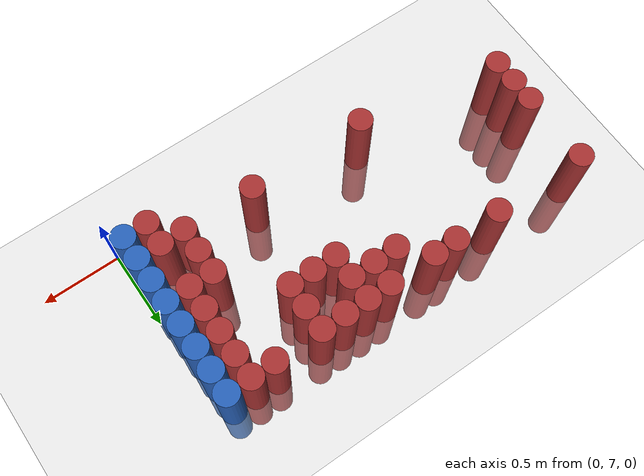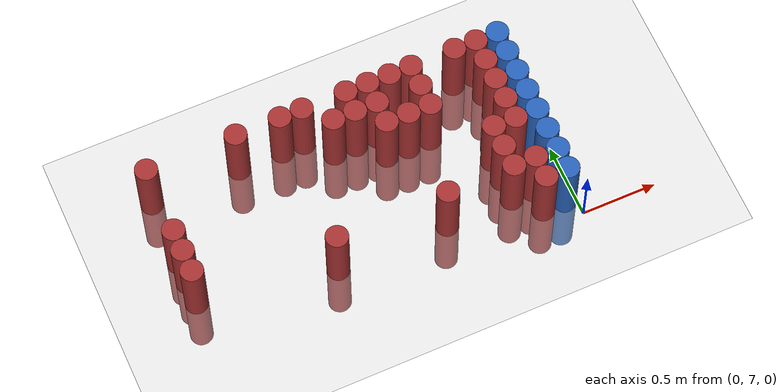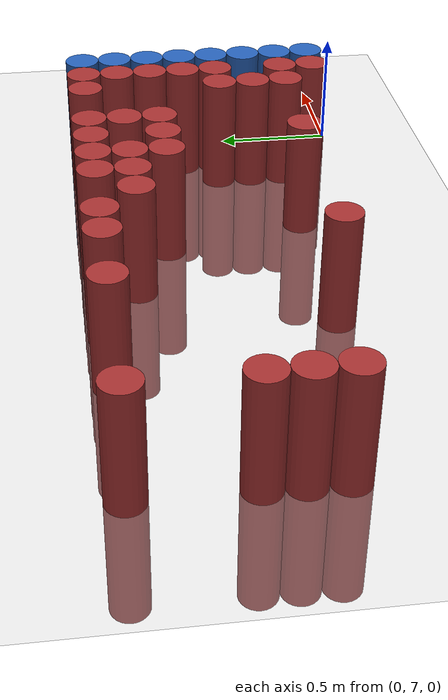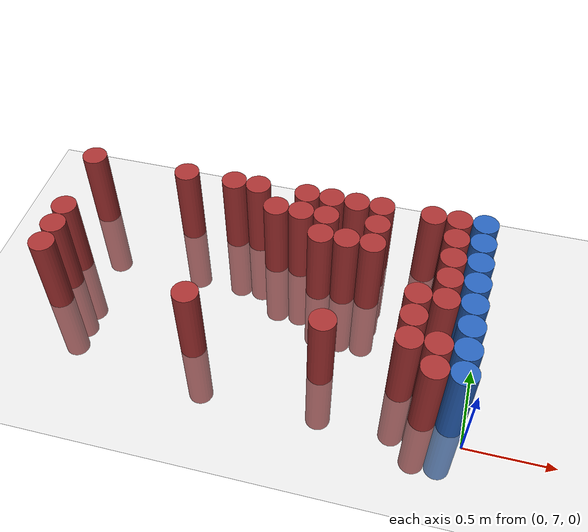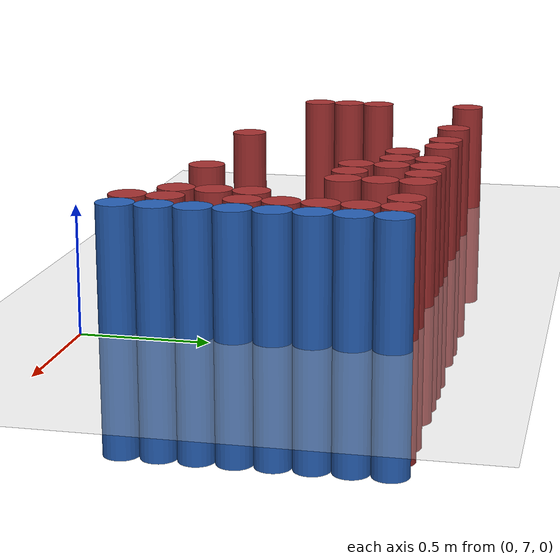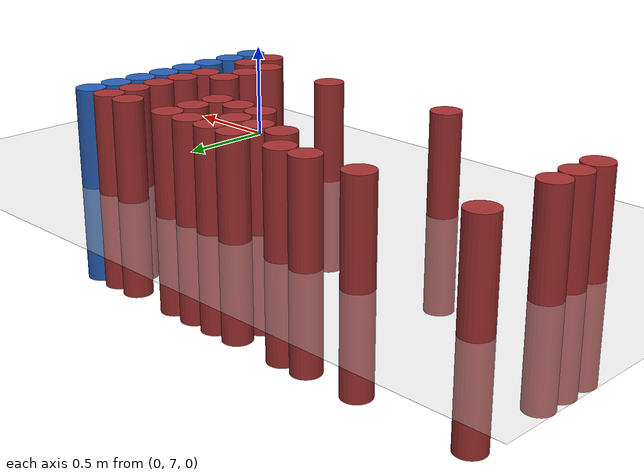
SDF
<sdf version="1.6">
 <world name="default">
  <model name="ground_plane">
   <static>1</static>
   <link name="link">
    <collision name="collision">
     <geometry><plane><normal>0 0 1</normal><size>100 100</size></plane></geometry>
     <surface><friction><ode><mu>100</mu><mu2>50</mu2></ode></friction></surface>
    </collision>
    <visual name="visual">
     <cast_shadows>0</cast_shadows>
     <geometry><plane><normal>0 0 1</normal><size>100 100</size></plane></geometry>
     <material>
      <script><uri>file://media/materials/scripts/gazebo.material</uri><name>Gazebo/Grey</name></script>
     </material>
    </visual>
   </link>
  </model>
  <model name="unit_cylinder_203">
   <static>1</static>
   <pose>-2.475000 7.425000 0.000000 0.000000 0.000000 0.000000</pose>
   <link name="link">
    <inertial>
     <mass>1</mass>
     <inertia><ixx>0.145833</ixx><ixy>0</ixy><ixz>0</ixz><iyy>0.145833</iyy><iyz>0</iyz><izz>0.125</izz></inertia>
    </inertial>
    <collision name="collision">
     <geometry><cylinder><radius>0.075000</radius><length>1</length></cylinder></geometry>
    </collision>
    <visual name="visual">
     <geometry><cylinder><radius>0.075000</radius><length>1</length></cylinder></geometry>
     <material>
      <ambient>0.648000 0.192000 0.192000 1</ambient>
      <diffuse>0.648000 0.192000 0.192000 1</diffuse>
     </material>
     <material>
      <script><name>Gazebo/Grey</name><uri>file://media/materials/scripts/gazebo.material</uri></script>
     </material>
    </visual>
    <sensor name="sensor_contact" type="contact"><contact><collision>collision</collision></contact></sensor>
   </link>
   <plugin filename="gz-sim-touchplugin-system" name="gz::sim::systems::TouchPlugin">
    <target>robot</target>
    <namespace>robot</namespace>
    <time>0.001</time>
    <enabled>true</enabled>
   </plugin>
  </model>
  <model name="unit_cylinder_204">
   <static>1</static>
   <pose>-2.475000 7.575000 0.000000 0.000000 0.000000 0.000000</pose>
   <link name="link">
    <inertial>
     <mass>1</mass>
     <inertia><ixx>0.145833</ixx><ixy>0</ixy><ixz>0</ixz><iyy>0.145833</iyy><iyz>0</iyz><izz>0.125</izz></inertia>
    </inertial>
    <collision name="collision">
     <geometry><cylinder><radius>0.075000</radius><length>1</length></cylinder></geometry>
    </collision>
    <visual name="visual">
     <geometry><cylinder><radius>0.075000</radius><length>1</length></cylinder></geometry>
     <material>
      <ambient>0.648000 0.192000 0.192000 1</ambient>
      <diffuse>0.648000 0.192000 0.192000 1</diffuse>
     </material>
     <material>
      <script><name>Gazebo/Grey</name><uri>file://media/materials/scripts/gazebo.material</uri></script>
     </material>
    </visual>
    <sensor name="sensor_contact" type="contact"><contact><collision>collision</collision></contact></sensor>
   </link>
   <plugin filename="gz-sim-touchplugin-system" name="gz::sim::systems::TouchPlugin">
    <target>robot</target>
    <namespace>robot</namespace>
    <time>0.001</time>
    <enabled>true</enabled>
   </plugin>
  </model>
  <model name="unit_cylinder_205">
   <static>1</static>
   <pose>-2.475000 7.725000 0.000000 0.000000 0.000000 0.000000</pose>
   <link name="link">
    <inertial>
     <mass>1</mass>
     <inertia><ixx>0.145833</ixx><ixy>0</ixy><ixz>0</ixz><iyy>0.145833</iyy><iyz>0</iyz><izz>0.125</izz></inertia>
    </inertial>
    <collision name="collision">
     <geometry><cylinder><radius>0.075000</radius><length>1</length></cylinder></geometry>
    </collision>
    <visual name="visual">
     <geometry><cylinder><radius>0.075000</radius><length>1</length></cylinder></geometry>
     <material>
      <ambient>0.648000 0.192000 0.192000 1</ambient>
      <diffuse>0.648000 0.192000 0.192000 1</diffuse>
     </material>
     <material>
      <script><name>Gazebo/Grey</name><uri>file://media/materials/scripts/gazebo.material</uri></script>
     </material>
    </visual>
    <sensor name="sensor_contact" type="contact"><contact><collision>collision</collision></contact></sensor>
   </link>
   <plugin filename="gz-sim-touchplugin-system" name="gz::sim::systems::TouchPlugin">
    <target>robot</target>
    <namespace>robot</namespace>
    <time>0.001</time>
    <enabled>true</enabled>
   </plugin>
  </model>
  <model name="unit_cylinder_206">
   <static>1</static>
   <pose>-2.475000 8.175000 0.000000 0.000000 0.000000 0.000000</pose>
   <link name="link">
    <inertial>
     <mass>1</mass>
     <inertia><ixx>0.145833</ixx><ixy>0</ixy><ixz>0</ixz><iyy>0.145833</iyy><iyz>0</iyz><izz>0.125</izz></inertia>
    </inertial>
    <collision name="collision">
     <geometry><cylinder><radius>0.075000</radius><length>1</length></cylinder></geometry>
    </collision>
    <visual name="visual">
     <geometry><cylinder><radius>0.075000</radius><length>1</length></cylinder></geometry>
     <material>
      <ambient>0.648000 0.192000 0.192000 1</ambient>
      <diffuse>0.648000 0.192000 0.192000 1</diffuse>
     </material>
     <material>
      <script><name>Gazebo/Grey</name><uri>file://media/materials/scripts/gazebo.material</uri></script>
     </material>
    </visual>
    <sensor name="sensor_contact" type="contact"><contact><collision>collision</collision></contact></sensor>
   </link>
   <plugin filename="gz-sim-touchplugin-system" name="gz::sim::systems::TouchPlugin">
    <target>robot</target>
    <namespace>robot</namespace>
    <time>0.001</time>
    <enabled>true</enabled>
   </plugin>
  </model>
  <model name="unit_cylinder_228">
   <static>1</static>
   <pose>-1.875000 8.175000 0.000000 0.000000 0.000000 0.000000</pose>
   <link name="link">
    <inertial>
     <mass>1</mass>
     <inertia><ixx>0.145833</ixx><ixy>0</ixy><ixz>0</ixz><iyy>0.145833</iyy><iyz>0</iyz><izz>0.125</izz></inertia>
    </inertial>
    <collision name="collision">
     <geometry><cylinder><radius>0.075000</radius><length>1</length></cylinder></geometry>
    </collision>
    <visual name="visual">
     <geometry><cylinder><radius>0.075000</radius><length>1</length></cylinder></geometry>
     <material>
      <ambient>0.648000 0.192000 0.192000 1</ambient>
      <diffuse>0.648000 0.192000 0.192000 1</diffuse>
     </material>
     <material>
      <script><name>Gazebo/Grey</name><uri>file://media/materials/scripts/gazebo.material</uri></script>
     </material>
    </visual>
    <sensor name="sensor_contact" type="contact"><contact><collision>collision</collision></contact></sensor>
   </link>
   <plugin filename="gz-sim-touchplugin-system" name="gz::sim::systems::TouchPlugin">
    <target>robot</target>
    <namespace>robot</namespace>
    <time>0.001</time>
    <enabled>true</enabled>
   </plugin>
  </model>
  <model name="unit_cylinder_252">
   <static>1</static>
   <pose>-1.575000 7.275000 0.000000 0.000000 0.000000 0.000000</pose>
   <link name="link">
    <inertial>
     <mass>1</mass>
     <inertia><ixx>0.145833</ixx><ixy>0</ixy><ixz>0</ixz><iyy>0.145833</iyy><iyz>0</iyz><izz>0.125</izz></inertia>
    </inertial>
    <collision name="collision">
     <geometry><cylinder><radius>0.075000</radius><length>1</length></cylinder></geometry>
    </collision>
    <visual name="visual">
     <geometry><cylinder><radius>0.075000</radius><length>1</length></cylinder></geometry>
     <material>
      <ambient>0.648000 0.192000 0.192000 1</ambient>
      <diffuse>0.648000 0.192000 0.192000 1</diffuse>
     </material>
     <material>
      <script><name>Gazebo/Grey</name><uri>file://media/materials/scripts/gazebo.material</uri></script>
     </material>
    </visual>
    <sensor name="sensor_contact" type="contact"><contact><collision>collision</collision></contact></sensor>
   </link>
   <plugin filename="gz-sim-touchplugin-system" name="gz::sim::systems::TouchPlugin">
    <target>robot</target>
    <namespace>robot</namespace>
    <time>0.001</time>
    <enabled>true</enabled>
   </plugin>
  </model>
  <model name="unit_cylinder_253">
   <static>1</static>
   <pose>-1.575000 8.175000 0.000000 0.000000 0.000000 0.000000</pose>
   <link name="link">
    <inertial>
     <mass>1</mass>
     <inertia><ixx>0.145833</ixx><ixy>0</ixy><ixz>0</ixz><iyy>0.145833</iyy><iyz>0</iyz><izz>0.125</izz></inertia>
    </inertial>
    <collision name="collision">
     <geometry><cylinder><radius>0.075000</radius><length>1</length></cylinder></geometry>
    </collision>
    <visual name="visual">
     <geometry><cylinder><radius>0.075000</radius><length>1</length></cylinder></geometry>
     <material>
      <ambient>0.648000 0.192000 0.192000 1</ambient>
      <diffuse>0.648000 0.192000 0.192000 1</diffuse>
     </material>
     <material>
      <script><name>Gazebo/Grey</name><uri>file://media/materials/scripts/gazebo.material</uri></script>
     </material>
    </visual>
    <sensor name="sensor_contact" type="contact"><contact><collision>collision</collision></contact></sensor>
   </link>
   <plugin filename="gz-sim-touchplugin-system" name="gz::sim::systems::TouchPlugin">
    <target>robot</target>
    <namespace>robot</namespace>
    <time>0.001</time>
    <enabled>true</enabled>
   </plugin>
  </model>
  <model name="unit_cylinder_263">
   <static>1</static>
   <pose>-1.425000 8.175000 0.000000 0.000000 0.000000 0.000000</pose>
   <link name="link">
    <inertial>
     <mass>1</mass>
     <inertia><ixx>0.145833</ixx><ixy>0</ixy><ixz>0</ixz><iyy>0.145833</iyy><iyz>0</iyz><izz>0.125</izz></inertia>
    </inertial>
    <collision name="collision">
     <geometry><cylinder><radius>0.075000</radius><length>1</length></cylinder></geometry>
    </collision>
    <visual name="visual">
     <geometry><cylinder><radius>0.075000</radius><length>1</length></cylinder></geometry>
     <material>
      <ambient>0.648000 0.192000 0.192000 1</ambient>
      <diffuse>0.648000 0.192000 0.192000 1</diffuse>
     </material>
     <material>
      <script><name>Gazebo/Grey</name><uri>file://media/materials/scripts/gazebo.material</uri></script>
     </material>
    </visual>
    <sensor name="sensor_contact" type="contact"><contact><collision>collision</collision></contact></sensor>
   </link>
   <plugin filename="gz-sim-touchplugin-system" name="gz::sim::systems::TouchPlugin">
    <target>robot</target>
    <namespace>robot</namespace>
    <time>0.001</time>
    <enabled>true</enabled>
   </plugin>
  </model>
  <model name="unit_cylinder_267">
   <static>1</static>
   <pose>-1.275000 8.025000 0.000000 0.000000 0.000000 0.000000</pose>
   <link name="link">
    <inertial>
     <mass>1</mass>
     <inertia><ixx>0.145833</ixx><ixy>0</ixy><ixz>0</ixz><iyy>0.145833</iyy><iyz>0</iyz><izz>0.125</izz></inertia>
    </inertial>
    <collision name="collision">
     <geometry><cylinder><radius>0.075000</radius><length>1</length></cylinder></geometry>
    </collision>
    <visual name="visual">
     <geometry><cylinder><radius>0.075000</radius><length>1</length></cylinder></geometry>
     <material>
      <ambient>0.648000 0.192000 0.192000 1</ambient>
      <diffuse>0.648000 0.192000 0.192000 1</diffuse>
     </material>
     <material>
      <script><name>Gazebo/Grey</name><uri>file://media/materials/scripts/gazebo.material</uri></script>
     </material>
    </visual>
    <sensor name="sensor_contact" type="contact"><contact><collision>collision</collision></contact></sensor>
   </link>
   <plugin filename="gz-sim-touchplugin-system" name="gz::sim::systems::TouchPlugin">
    <target>robot</target>
    <namespace>robot</namespace>
    <time>0.001</time>
    <enabled>true</enabled>
   </plugin>
  </model>
  <model name="unit_cylinder_270">
   <static>1</static>
   <pose>-1.125000 8.025000 0.000000 0.000000 0.000000 0.000000</pose>
   <link name="link">
    <inertial>
     <mass>1</mass>
     <inertia><ixx>0.145833</ixx><ixy>0</ixy><ixz>0</ixz><iyy>0.145833</iyy><iyz>0</iyz><izz>0.125</izz></inertia>
    </inertial>
    <collision name="collision">
     <geometry><cylinder><radius>0.075000</radius><length>1</length></cylinder></geometry>
    </collision>
    <visual name="visual">
     <geometry><cylinder><radius>0.075000</radius><length>1</length></cylinder></geometry>
     <material>
      <ambient>0.648000 0.192000 0.192000 1</ambient>
      <diffuse>0.648000 0.192000 0.192000 1</diffuse>
     </material>
     <material>
      <script><name>Gazebo/Grey</name><uri>file://media/materials/scripts/gazebo.material</uri></script>
     </material>
    </visual>
    <sensor name="sensor_contact" type="contact"><contact><collision>collision</collision></contact></sensor>
   </link>
   <plugin filename="gz-sim-touchplugin-system" name="gz::sim::systems::TouchPlugin">
    <target>robot</target>
    <namespace>robot</namespace>
    <time>0.001</time>
    <enabled>true</enabled>
   </plugin>
  </model>
  <model name="unit_cylinder_271">
   <static>1</static>
   <pose>-1.125000 8.175000 0.000000 0.000000 0.000000 0.000000</pose>
   <link name="link">
    <inertial>
     <mass>1</mass>
     <inertia><ixx>0.145833</ixx><ixy>0</ixy><ixz>0</ixz><iyy>0.145833</iyy><iyz>0</iyz><izz>0.125</izz></inertia>
    </inertial>
    <collision name="collision">
     <geometry><cylinder><radius>0.075000</radius><length>1</length></cylinder></geometry>
    </collision>
    <visual name="visual">
     <geometry><cylinder><radius>0.075000</radius><length>1</length></cylinder></geometry>
     <material>
      <ambient>0.648000 0.192000 0.192000 1</ambient>
      <diffuse>0.648000 0.192000 0.192000 1</diffuse>
     </material>
     <material>
      <script><name>Gazebo/Grey</name><uri>file://media/materials/scripts/gazebo.material</uri></script>
     </material>
    </visual>
    <sensor name="sensor_contact" type="contact"><contact><collision>collision</collision></contact></sensor>
   </link>
   <plugin filename="gz-sim-touchplugin-system" name="gz::sim::systems::TouchPlugin">
    <target>robot</target>
    <namespace>robot</namespace>
    <time>0.001</time>
    <enabled>true</enabled>
   </plugin>
  </model>
  <model name="unit_cylinder_273">
   <static>1</static>
   <pose>-0.975000 7.875000 0.000000 0.000000 0.000000 0.000000</pose>
   <link name="link">
    <inertial>
     <mass>1</mass>
     <inertia><ixx>0.145833</ixx><ixy>0</ixy><ixz>0</ixz><iyy>0.145833</iyy><iyz>0</iyz><izz>0.125</izz></inertia>
    </inertial>
    <collision name="collision">
     <geometry><cylinder><radius>0.075000</radius><length>1</length></cylinder></geometry>
    </collision>
    <visual name="visual">
     <geometry><cylinder><radius>0.075000</radius><length>1</length></cylinder></geometry>
     <material>
      <ambient>0.648000 0.192000 0.192000 1</ambient>
      <diffuse>0.648000 0.192000 0.192000 1</diffuse>
     </material>
     <material>
      <script><name>Gazebo/Grey</name><uri>file://media/materials/scripts/gazebo.material</uri></script>
     </material>
    </visual>
    <sensor name="sensor_contact" type="contact"><contact><collision>collision</collision></contact></sensor>
   </link>
   <plugin filename="gz-sim-touchplugin-system" name="gz::sim::systems::TouchPlugin">
    <target>robot</target>
    <namespace>robot</namespace>
    <time>0.001</time>
    <enabled>true</enabled>
   </plugin>
  </model>
  <model name="unit_cylinder_274">
   <static>1</static>
   <pose>-0.975000 8.025000 0.000000 0.000000 0.000000 0.000000</pose>
   <link name="link">
    <inertial>
     <mass>1</mass>
     <inertia><ixx>0.145833</ixx><ixy>0</ixy><ixz>0</ixz><iyy>0.145833</iyy><iyz>0</iyz><izz>0.125</izz></inertia>
    </inertial>
    <collision name="collision">
     <geometry><cylinder><radius>0.075000</radius><length>1</length></cylinder></geometry>
    </collision>
    <visual name="visual">
     <geometry><cylinder><radius>0.075000</radius><length>1</length></cylinder></geometry>
     <material>
      <ambient>0.648000 0.192000 0.192000 1</ambient>
      <diffuse>0.648000 0.192000 0.192000 1</diffuse>
     </material>
     <material>
      <script><name>Gazebo/Grey</name><uri>file://media/materials/scripts/gazebo.material</uri></script>
     </material>
    </visual>
    <sensor name="sensor_contact" type="contact"><contact><collision>collision</collision></contact></sensor>
   </link>
   <plugin filename="gz-sim-touchplugin-system" name="gz::sim::systems::TouchPlugin">
    <target>robot</target>
    <namespace>robot</namespace>
    <time>0.001</time>
    <enabled>true</enabled>
   </plugin>
  </model>
  <model name="unit_cylinder_275">
   <static>1</static>
   <pose>-0.975000 8.175000 0.000000 0.000000 0.000000 0.000000</pose>
   <link name="link">
    <inertial>
     <mass>1</mass>
     <inertia><ixx>0.145833</ixx><ixy>0</ixy><ixz>0</ixz><iyy>0.145833</iyy><iyz>0</iyz><izz>0.125</izz></inertia>
    </inertial>
    <collision name="collision">
     <geometry><cylinder><radius>0.075000</radius><length>1</length></cylinder></geometry>
    </collision>
    <visual name="visual">
     <geometry><cylinder><radius>0.075000</radius><length>1</length></cylinder></geometry>
     <material>
      <ambient>0.648000 0.192000 0.192000 1</ambient>
      <diffuse>0.648000 0.192000 0.192000 1</diffuse>
     </material>
     <material>
      <script><name>Gazebo/Grey</name><uri>file://media/materials/scripts/gazebo.material</uri></script>
     </material>
    </visual>
    <sensor name="sensor_contact" type="contact"><contact><collision>collision</collision></contact></sensor>
   </link>
   <plugin filename="gz-sim-touchplugin-system" name="gz::sim::systems::TouchPlugin">
    <target>robot</target>
    <namespace>robot</namespace>
    <time>0.001</time>
    <enabled>true</enabled>
   </plugin>
  </model>
  <model name="unit_cylinder_279">
   <static>1</static>
   <pose>-0.825000 7.275000 0.000000 0.000000 0.000000 0.000000</pose>
   <link name="link">
    <inertial>
     <mass>1</mass>
     <inertia><ixx>0.145833</ixx><ixy>0</ixy><ixz>0</ixz><iyy>0.145833</iyy><iyz>0</iyz><izz>0.125</izz></inertia>
    </inertial>
    <collision name="collision">
     <geometry><cylinder><radius>0.075000</radius><length>1</length></cylinder></geometry>
    </collision>
    <visual name="visual">
     <geometry><cylinder><radius>0.075000</radius><length>1</length></cylinder></geometry>
     <material>
      <ambient>0.648000 0.192000 0.192000 1</ambient>
      <diffuse>0.648000 0.192000 0.192000 1</diffuse>
     </material>
     <material>
      <script><name>Gazebo/Grey</name><uri>file://media/materials/scripts/gazebo.material</uri></script>
     </material>
    </visual>
    <sensor name="sensor_contact" type="contact"><contact><collision>collision</collision></contact></sensor>
   </link>
   <plugin filename="gz-sim-touchplugin-system" name="gz::sim::systems::TouchPlugin">
    <target>robot</target>
    <namespace>robot</namespace>
    <time>0.001</time>
    <enabled>true</enabled>
   </plugin>
  </model>
  <model name="unit_cylinder_280">
   <static>1</static>
   <pose>-0.825000 7.875000 0.000000 0.000000 0.000000 0.000000</pose>
   <link name="link">
    <inertial>
     <mass>1</mass>
     <inertia><ixx>0.145833</ixx><ixy>0</ixy><ixz>0</ixz><iyy>0.145833</iyy><iyz>0</iyz><izz>0.125</izz></inertia>
    </inertial>
    <collision name="collision">
     <geometry><cylinder><radius>0.075000</radius><length>1</length></cylinder></geometry>
    </collision>
    <visual name="visual">
     <geometry><cylinder><radius>0.075000</radius><length>1</length></cylinder></geometry>
     <material>
      <ambient>0.648000 0.192000 0.192000 1</ambient>
      <diffuse>0.648000 0.192000 0.192000 1</diffuse>
     </material>
     <material>
      <script><name>Gazebo/Grey</name><uri>file://media/materials/scripts/gazebo.material</uri></script>
     </material>
    </visual>
    <sensor name="sensor_contact" type="contact"><contact><collision>collision</collision></contact></sensor>
   </link>
   <plugin filename="gz-sim-touchplugin-system" name="gz::sim::systems::TouchPlugin">
    <target>robot</target>
    <namespace>robot</namespace>
    <time>0.001</time>
    <enabled>true</enabled>
   </plugin>
  </model>
  <model name="unit_cylinder_281">
   <static>1</static>
   <pose>-0.825000 8.175000 0.000000 0.000000 0.000000 0.000000</pose>
   <link name="link">
    <inertial>
     <mass>1</mass>
     <inertia><ixx>0.145833</ixx><ixy>0</ixy><ixz>0</ixz><iyy>0.145833</iyy><iyz>0</iyz><izz>0.125</izz></inertia>
    </inertial>
    <collision name="collision">
     <geometry><cylinder><radius>0.075000</radius><length>1</length></cylinder></geometry>
    </collision>
    <visual name="visual">
     <geometry><cylinder><radius>0.075000</radius><length>1</length></cylinder></geometry>
     <material>
      <ambient>0.648000 0.192000 0.192000 1</ambient>
      <diffuse>0.648000 0.192000 0.192000 1</diffuse>
     </material>
     <material>
      <script><name>Gazebo/Grey</name><uri>file://media/materials/scripts/gazebo.material</uri></script>
     </material>
    </visual>
    <sensor name="sensor_contact" type="contact"><contact><collision>collision</collision></contact></sensor>
   </link>
   <plugin filename="gz-sim-touchplugin-system" name="gz::sim::systems::TouchPlugin">
    <target>robot</target>
    <namespace>robot</namespace>
    <time>0.001</time>
    <enabled>true</enabled>
   </plugin>
  </model>
  <model name="unit_cylinder_285">
   <static>1</static>
   <pose>-0.675000 7.875000 0.000000 0.000000 0.000000 0.000000</pose>
   <link name="link">
    <inertial>
     <mass>1</mass>
     <inertia><ixx>0.145833</ixx><ixy>0</ixy><ixz>0</ixz><iyy>0.145833</iyy><iyz>0</iyz><izz>0.125</izz></inertia>
    </inertial>
    <collision name="collision">
     <geometry><cylinder><radius>0.075000</radius><length>1</length></cylinder></geometry>
    </collision>
    <visual name="visual">
     <geometry><cylinder><radius>0.075000</radius><length>1</length></cylinder></geometry>
     <material>
      <ambient>0.648000 0.192000 0.192000 1</ambient>
      <diffuse>0.648000 0.192000 0.192000 1</diffuse>
     </material>
     <material>
      <script><name>Gazebo/Grey</name><uri>file://media/materials/scripts/gazebo.material</uri></script>
     </material>
    </visual>
    <sensor name="sensor_contact" type="contact"><contact><collision>collision</collision></contact></sensor>
   </link>
   <plugin filename="gz-sim-touchplugin-system" name="gz::sim::systems::TouchPlugin">
    <target>robot</target>
    <namespace>robot</namespace>
    <time>0.001</time>
    <enabled>true</enabled>
   </plugin>
  </model>
  <model name="unit_cylinder_286">
   <static>1</static>
   <pose>-0.675000 8.025000 0.000000 0.000000 0.000000 0.000000</pose>
   <link name="link">
    <inertial>
     <mass>1</mass>
     <inertia><ixx>0.145833</ixx><ixy>0</ixy><ixz>0</ixz><iyy>0.145833</iyy><iyz>0</iyz><izz>0.125</izz></inertia>
    </inertial>
    <collision name="collision">
     <geometry><cylinder><radius>0.075000</radius><length>1</length></cylinder></geometry>
    </collision>
    <visual name="visual">
     <geometry><cylinder><radius>0.075000</radius><length>1</length></cylinder></geometry>
     <material>
      <ambient>0.648000 0.192000 0.192000 1</ambient>
      <diffuse>0.648000 0.192000 0.192000 1</diffuse>
     </material>
     <material>
      <script><name>Gazebo/Grey</name><uri>file://media/materials/scripts/gazebo.material</uri></script>
     </material>
    </visual>
    <sensor name="sensor_contact" type="contact"><contact><collision>collision</collision></contact></sensor>
   </link>
   <plugin filename="gz-sim-touchplugin-system" name="gz::sim::systems::TouchPlugin">
    <target>robot</target>
    <namespace>robot</namespace>
    <time>0.001</time>
    <enabled>true</enabled>
   </plugin>
  </model>
  <model name="unit_cylinder_287">
   <static>1</static>
   <pose>-0.675000 8.175000 0.000000 0.000000 0.000000 0.000000</pose>
   <link name="link">
    <inertial>
     <mass>1</mass>
     <inertia><ixx>0.145833</ixx><ixy>0</ixy><ixz>0</ixz><iyy>0.145833</iyy><iyz>0</iyz><izz>0.125</izz></inertia>
    </inertial>
    <collision name="collision">
     <geometry><cylinder><radius>0.075000</radius><length>1</length></cylinder></geometry>
    </collision>
    <visual name="visual">
     <geometry><cylinder><radius>0.075000</radius><length>1</length></cylinder></geometry>
     <material>
      <ambient>0.648000 0.192000 0.192000 1</ambient>
      <diffuse>0.648000 0.192000 0.192000 1</diffuse>
     </material>
     <material>
      <script><name>Gazebo/Grey</name><uri>file://media/materials/scripts/gazebo.material</uri></script>
     </material>
    </visual>
    <sensor name="sensor_contact" type="contact"><contact><collision>collision</collision></contact></sensor>
   </link>
   <plugin filename="gz-sim-touchplugin-system" name="gz::sim::systems::TouchPlugin">
    <target>robot</target>
    <namespace>robot</namespace>
    <time>0.001</time>
    <enabled>true</enabled>
   </plugin>
  </model>
  <model name="unit_cylinder_298">
   <static>1</static>
   <pose>-0.375000 7.275000 0.000000 0.000000 0.000000 0.000000</pose>
   <link name="link">
    <inertial>
     <mass>1</mass>
     <inertia><ixx>0.145833</ixx><ixy>0</ixy><ixz>0</ixz><iyy>0.145833</iyy><iyz>0</iyz><izz>0.125</izz></inertia>
    </inertial>
    <collision name="collision">
     <geometry><cylinder><radius>0.075000</radius><length>1</length></cylinder></geometry>
    </collision>
    <visual name="visual">
     <geometry><cylinder><radius>0.075000</radius><length>1</length></cylinder></geometry>
     <material>
      <ambient>0.648000 0.192000 0.192000 1</ambient>
      <diffuse>0.648000 0.192000 0.192000 1</diffuse>
     </material>
     <material>
      <script><name>Gazebo/Grey</name><uri>file://media/materials/scripts/gazebo.material</uri></script>
     </material>
    </visual>
    <sensor name="sensor_contact" type="contact"><contact><collision>collision</collision></contact></sensor>
   </link>
   <plugin filename="gz-sim-touchplugin-system" name="gz::sim::systems::TouchPlugin">
    <target>robot</target>
    <namespace>robot</namespace>
    <time>0.001</time>
    <enabled>true</enabled>
   </plugin>
  </model>
  <model name="unit_cylinder_299">
   <static>1</static>
   <pose>-0.375000 7.425000 0.000000 0.000000 0.000000 0.000000</pose>
   <link name="link">
    <inertial>
     <mass>1</mass>
     <inertia><ixx>0.145833</ixx><ixy>0</ixy><ixz>0</ixz><iyy>0.145833</iyy><iyz>0</iyz><izz>0.125</izz></inertia>
    </inertial>
    <collision name="collision">
     <geometry><cylinder><radius>0.075000</radius><length>1</length></cylinder></geometry>
    </collision>
    <visual name="visual">
     <geometry><cylinder><radius>0.075000</radius><length>1</length></cylinder></geometry>
     <material>
      <ambient>0.648000 0.192000 0.192000 1</ambient>
      <diffuse>0.648000 0.192000 0.192000 1</diffuse>
     </material>
     <material>
      <script><name>Gazebo/Grey</name><uri>file://media/materials/scripts/gazebo.material</uri></script>
     </material>
    </visual>
    <sensor name="sensor_contact" type="contact"><contact><collision>collision</collision></contact></sensor>
   </link>
   <plugin filename="gz-sim-touchplugin-system" name="gz::sim::systems::TouchPlugin">
    <target>robot</target>
    <namespace>robot</namespace>
    <time>0.001</time>
    <enabled>true</enabled>
   </plugin>
  </model>
  <model name="unit_cylinder_300">
   <static>1</static>
   <pose>-0.375000 7.575000 0.000000 0.000000 0.000000 0.000000</pose>
   <link name="link">
    <inertial>
     <mass>1</mass>
     <inertia><ixx>0.145833</ixx><ixy>0</ixy><ixz>0</ixz><iyy>0.145833</iyy><iyz>0</iyz><izz>0.125</izz></inertia>
    </inertial>
    <collision name="collision">
     <geometry><cylinder><radius>0.075000</radius><length>1</length></cylinder></geometry>
    </collision>
    <visual name="visual">
     <geometry><cylinder><radius>0.075000</radius><length>1</length></cylinder></geometry>
     <material>
      <ambient>0.648000 0.192000 0.192000 1</ambient>
      <diffuse>0.648000 0.192000 0.192000 1</diffuse>
     </material>
     <material>
      <script><name>Gazebo/Grey</name><uri>file://media/materials/scripts/gazebo.material</uri></script>
     </material>
    </visual>
    <sensor name="sensor_contact" type="contact"><contact><collision>collision</collision></contact></sensor>
   </link>
   <plugin filename="gz-sim-touchplugin-system" name="gz::sim::systems::TouchPlugin">
    <target>robot</target>
    <namespace>robot</namespace>
    <time>0.001</time>
    <enabled>true</enabled>
   </plugin>
  </model>
  <model name="unit_cylinder_301">
   <static>1</static>
   <pose>-0.375000 8.175000 0.000000 0.000000 0.000000 0.000000</pose>
   <link name="link">
    <inertial>
     <mass>1</mass>
     <inertia><ixx>0.145833</ixx><ixy>0</ixy><ixz>0</ixz><iyy>0.145833</iyy><iyz>0</iyz><izz>0.125</izz></inertia>
    </inertial>
    <collision name="collision">
     <geometry><cylinder><radius>0.075000</radius><length>1</length></cylinder></geometry>
    </collision>
    <visual name="visual">
     <geometry><cylinder><radius>0.075000</radius><length>1</length></cylinder></geometry>
     <material>
      <ambient>0.648000 0.192000 0.192000 1</ambient>
      <diffuse>0.648000 0.192000 0.192000 1</diffuse>
     </material>
     <material>
      <script><name>Gazebo/Grey</name><uri>file://media/materials/scripts/gazebo.material</uri></script>
     </material>
    </visual>
    <sensor name="sensor_contact" type="contact"><contact><collision>collision</collision></contact></sensor>
   </link>
   <plugin filename="gz-sim-touchplugin-system" name="gz::sim::systems::TouchPlugin">
    <target>robot</target>
    <namespace>robot</namespace>
    <time>0.001</time>
    <enabled>true</enabled>
   </plugin>
  </model>
  <model name="unit_cylinder_311">
   <static>1</static>
   <pose>-0.225000 7.125000 0.000000 0.000000 0.000000 0.000000</pose>
   <link name="link">
    <inertial>
     <mass>1</mass>
     <inertia><ixx>0.145833</ixx><ixy>0</ixy><ixz>0</ixz><iyy>0.145833</iyy><iyz>0</iyz><izz>0.125</izz></inertia>
    </inertial>
    <collision name="collision">
     <geometry><cylinder><radius>0.075000</radius><length>1</length></cylinder></geometry>
    </collision>
    <visual name="visual">
     <geometry><cylinder><radius>0.075000</radius><length>1</length></cylinder></geometry>
     <material>
      <ambient>0.648000 0.192000 0.192000 1</ambient>
      <diffuse>0.648000 0.192000 0.192000 1</diffuse>
     </material>
     <material>
      <script><name>Gazebo/Grey</name><uri>file://media/materials/scripts/gazebo.material</uri></script>
     </material>
    </visual>
    <sensor name="sensor_contact" type="contact"><contact><collision>collision</collision></contact></sensor>
   </link>
   <plugin filename="gz-sim-touchplugin-system" name="gz::sim::systems::TouchPlugin">
    <target>robot</target>
    <namespace>robot</namespace>
    <time>0.001</time>
    <enabled>true</enabled>
   </plugin>
  </model>
  <model name="unit_cylinder_312">
   <static>1</static>
   <pose>-0.225000 7.275000 0.000000 0.000000 0.000000 0.000000</pose>
   <link name="link">
    <inertial>
     <mass>1</mass>
     <inertia><ixx>0.145833</ixx><ixy>0</ixy><ixz>0</ixz><iyy>0.145833</iyy><iyz>0</iyz><izz>0.125</izz></inertia>
    </inertial>
    <collision name="collision">
     <geometry><cylinder><radius>0.075000</radius><length>1</length></cylinder></geometry>
    </collision>
    <visual name="visual">
     <geometry><cylinder><radius>0.075000</radius><length>1</length></cylinder></geometry>
     <material>
      <ambient>0.648000 0.192000 0.192000 1</ambient>
      <diffuse>0.648000 0.192000 0.192000 1</diffuse>
     </material>
     <material>
      <script><name>Gazebo/Grey</name><uri>file://media/materials/scripts/gazebo.material</uri></script>
     </material>
    </visual>
    <sensor name="sensor_contact" type="contact"><contact><collision>collision</collision></contact></sensor>
   </link>
   <plugin filename="gz-sim-touchplugin-system" name="gz::sim::systems::TouchPlugin">
    <target>robot</target>
    <namespace>robot</namespace>
    <time>0.001</time>
    <enabled>true</enabled>
   </plugin>
  </model>
  <model name="unit_cylinder_313">
   <static>1</static>
   <pose>-0.225000 7.575000 0.000000 0.000000 0.000000 0.000000</pose>
   <link name="link">
    <inertial>
     <mass>1</mass>
     <inertia><ixx>0.145833</ixx><ixy>0</ixy><ixz>0</ixz><iyy>0.145833</iyy><iyz>0</iyz><izz>0.125</izz></inertia>
    </inertial>
    <collision name="collision">
     <geometry><cylinder><radius>0.075000</radius><length>1</length></cylinder></geometry>
    </collision>
    <visual name="visual">
     <geometry><cylinder><radius>0.075000</radius><length>1</length></cylinder></geometry>
     <material>
      <ambient>0.648000 0.192000 0.192000 1</ambient>
      <diffuse>0.648000 0.192000 0.192000 1</diffuse>
     </material>
     <material>
      <script><name>Gazebo/Grey</name><uri>file://media/materials/scripts/gazebo.material</uri></script>
     </material>
    </visual>
    <sensor name="sensor_contact" type="contact"><contact><collision>collision</collision></contact></sensor>
   </link>
   <plugin filename="gz-sim-touchplugin-system" name="gz::sim::systems::TouchPlugin">
    <target>robot</target>
    <namespace>robot</namespace>
    <time>0.001</time>
    <enabled>true</enabled>
   </plugin>
  </model>
  <model name="unit_cylinder_314">
   <static>1</static>
   <pose>-0.225000 7.725000 0.000000 0.000000 0.000000 0.000000</pose>
   <link name="link">
    <inertial>
     <mass>1</mass>
     <inertia><ixx>0.145833</ixx><ixy>0</ixy><ixz>0</ixz><iyy>0.145833</iyy><iyz>0</iyz><izz>0.125</izz></inertia>
    </inertial>
    <collision name="collision">
     <geometry><cylinder><radius>0.075000</radius><length>1</length></cylinder></geometry>
    </collision>
    <visual name="visual">
     <geometry><cylinder><radius>0.075000</radius><length>1</length></cylinder></geometry>
     <material>
      <ambient>0.648000 0.192000 0.192000 1</ambient>
      <diffuse>0.648000 0.192000 0.192000 1</diffuse>
     </material>
     <material>
      <script><name>Gazebo/Grey</name><uri>file://media/materials/scripts/gazebo.material</uri></script>
     </material>
    </visual>
    <sensor name="sensor_contact" type="contact"><contact><collision>collision</collision></contact></sensor>
   </link>
   <plugin filename="gz-sim-touchplugin-system" name="gz::sim::systems::TouchPlugin">
    <target>robot</target>
    <namespace>robot</namespace>
    <time>0.001</time>
    <enabled>true</enabled>
   </plugin>
  </model>
  <model name="unit_cylinder_315">
   <static>1</static>
   <pose>-0.225000 7.875000 0.000000 0.000000 0.000000 0.000000</pose>
   <link name="link">
    <inertial>
     <mass>1</mass>
     <inertia><ixx>0.145833</ixx><ixy>0</ixy><ixz>0</ixz><iyy>0.145833</iyy><iyz>0</iyz><izz>0.125</izz></inertia>
    </inertial>
    <collision name="collision">
     <geometry><cylinder><radius>0.075000</radius><length>1</length></cylinder></geometry>
    </collision>
    <visual name="visual">
     <geometry><cylinder><radius>0.075000</radius><length>1</length></cylinder></geometry>
     <material>
      <ambient>0.648000 0.192000 0.192000 1</ambient>
      <diffuse>0.648000 0.192000 0.192000 1</diffuse>
     </material>
     <material>
      <script><name>Gazebo/Grey</name><uri>file://media/materials/scripts/gazebo.material</uri></script>
     </material>
    </visual>
    <sensor name="sensor_contact" type="contact"><contact><collision>collision</collision></contact></sensor>
   </link>
   <plugin filename="gz-sim-touchplugin-system" name="gz::sim::systems::TouchPlugin">
    <target>robot</target>
    <namespace>robot</namespace>
    <time>0.001</time>
    <enabled>true</enabled>
   </plugin>
  </model>
  <model name="unit_cylinder_316">
   <static>1</static>
   <pose>-0.225000 8.025000 0.000000 0.000000 0.000000 0.000000</pose>
   <link name="link">
    <inertial>
     <mass>1</mass>
     <inertia><ixx>0.145833</ixx><ixy>0</ixy><ixz>0</ixz><iyy>0.145833</iyy><iyz>0</iyz><izz>0.125</izz></inertia>
    </inertial>
    <collision name="collision">
     <geometry><cylinder><radius>0.075000</radius><length>1</length></cylinder></geometry>
    </collision>
    <visual name="visual">
     <geometry><cylinder><radius>0.075000</radius><length>1</length></cylinder></geometry>
     <material>
      <ambient>0.648000 0.192000 0.192000 1</ambient>
      <diffuse>0.648000 0.192000 0.192000 1</diffuse>
     </material>
     <material>
      <script><name>Gazebo/Grey</name><uri>file://media/materials/scripts/gazebo.material</uri></script>
     </material>
    </visual>
    <sensor name="sensor_contact" type="contact"><contact><collision>collision</collision></contact></sensor>
   </link>
   <plugin filename="gz-sim-touchplugin-system" name="gz::sim::systems::TouchPlugin">
    <target>robot</target>
    <namespace>robot</namespace>
    <time>0.001</time>
    <enabled>true</enabled>
   </plugin>
  </model>
  <model name="unit_cylinder_317">
   <static>1</static>
   <pose>-0.225000 8.175000 0.000000 0.000000 0.000000 0.000000</pose>
   <link name="link">
    <inertial>
     <mass>1</mass>
     <inertia><ixx>0.145833</ixx><ixy>0</ixy><ixz>0</ixz><iyy>0.145833</iyy><iyz>0</iyz><izz>0.125</izz></inertia>
    </inertial>
    <collision name="collision">
     <geometry><cylinder><radius>0.075000</radius><length>1</length></cylinder></geometry>
    </collision>
    <visual name="visual">
     <geometry><cylinder><radius>0.075000</radius><length>1</length></cylinder></geometry>
     <material>
      <ambient>0.648000 0.192000 0.192000 1</ambient>
      <diffuse>0.648000 0.192000 0.192000 1</diffuse>
     </material>
     <material>
      <script><name>Gazebo/Grey</name><uri>file://media/materials/scripts/gazebo.material</uri></script>
     </material>
    </visual>
    <sensor name="sensor_contact" type="contact"><contact><collision>collision</collision></contact></sensor>
   </link>
   <plugin filename="gz-sim-touchplugin-system" name="gz::sim::systems::TouchPlugin">
    <target>robot</target>
    <namespace>robot</namespace>
    <time>0.001</time>
    <enabled>true</enabled>
   </plugin>
  </model>
  <model name="unit_cylinder_338">
   <static>1</static>
   <pose>-0.075000 7.125000 0.000000 0.000000 0.000000 0.000000</pose>
   <link name="link">
    <inertial>
     <mass>1</mass>
     <inertia><ixx>0.145833</ixx><ixy>0</ixy><ixz>0</ixz><iyy>0.145833</iyy><iyz>0</iyz><izz>0.125</izz></inertia>
    </inertial>
    <collision name="collision">
     <geometry><cylinder><radius>0.075000</radius><length>1</length></cylinder></geometry>
    </collision>
    <visual name="visual">
     <geometry><cylinder><radius>0.075000</radius><length>1</length></cylinder></geometry>
     <material>
      <ambient>0.152000 0.379000 0.720000 1</ambient>
      <diffuse>0.152000 0.379000 0.720000 1</diffuse>
     </material>
     <material>
      <script><name>Gazebo/Grey</name><uri>file://media/materials/scripts/gazebo.material</uri></script>
     </material>
    </visual>
    <sensor name="sensor_contact" type="contact"><contact><collision>collision</collision></contact></sensor>
   </link>
   <plugin filename="gz-sim-touchplugin-system" name="gz::sim::systems::TouchPlugin">
    <target>robot</target>
    <namespace>robot</namespace>
    <time>0.001</time>
    <enabled>true</enabled>
   </plugin>
  </model>
  <model name="unit_cylinder_339">
   <static>1</static>
   <pose>-0.075000 7.275000 0.000000 0.000000 0.000000 0.000000</pose>
   <link name="link">
    <inertial>
     <mass>1</mass>
     <inertia><ixx>0.145833</ixx><ixy>0</ixy><ixz>0</ixz><iyy>0.145833</iyy><iyz>0</iyz><izz>0.125</izz></inertia>
    </inertial>
    <collision name="collision">
     <geometry><cylinder><radius>0.075000</radius><length>1</length></cylinder></geometry>
    </collision>
    <visual name="visual">
     <geometry><cylinder><radius>0.075000</radius><length>1</length></cylinder></geometry>
     <material>
      <ambient>0.152000 0.379000 0.720000 1</ambient>
      <diffuse>0.152000 0.379000 0.720000 1</diffuse>
     </material>
     <material>
      <script><name>Gazebo/Grey</name><uri>file://media/materials/scripts/gazebo.material</uri></script>
     </material>
    </visual>
    <sensor name="sensor_contact" type="contact"><contact><collision>collision</collision></contact></sensor>
   </link>
   <plugin filename="gz-sim-touchplugin-system" name="gz::sim::systems::TouchPlugin">
    <target>robot</target>
    <namespace>robot</namespace>
    <time>0.001</time>
    <enabled>true</enabled>
   </plugin>
  </model>
  <model name="unit_cylinder_340">
   <static>1</static>
   <pose>-0.075000 7.425000 0.000000 0.000000 0.000000 0.000000</pose>
   <link name="link">
    <inertial>
     <mass>1</mass>
     <inertia><ixx>0.145833</ixx><ixy>0</ixy><ixz>0</ixz><iyy>0.145833</iyy><iyz>0</iyz><izz>0.125</izz></inertia>
    </inertial>
    <collision name="collision">
     <geometry><cylinder><radius>0.075000</radius><length>1</length></cylinder></geometry>
    </collision>
    <visual name="visual">
     <geometry><cylinder><radius>0.075000</radius><length>1</length></cylinder></geometry>
     <material>
      <ambient>0.152000 0.379000 0.720000 1</ambient>
      <diffuse>0.152000 0.379000 0.720000 1</diffuse>
     </material>
     <material>
      <script><name>Gazebo/Grey</name><uri>file://media/materials/scripts/gazebo.material</uri></script>
     </material>
    </visual>
    <sensor name="sensor_contact" type="contact"><contact><collision>collision</collision></contact></sensor>
   </link>
   <plugin filename="gz-sim-touchplugin-system" name="gz::sim::systems::TouchPlugin">
    <target>robot</target>
    <namespace>robot</namespace>
    <time>0.001</time>
    <enabled>true</enabled>
   </plugin>
  </model>
  <model name="unit_cylinder_341">
   <static>1</static>
   <pose>-0.075000 7.575000 0.000000 0.000000 0.000000 0.000000</pose>
   <link name="link">
    <inertial>
     <mass>1</mass>
     <inertia><ixx>0.145833</ixx><ixy>0</ixy><ixz>0</ixz><iyy>0.145833</iyy><iyz>0</iyz><izz>0.125</izz></inertia>
    </inertial>
    <collision name="collision">
     <geometry><cylinder><radius>0.075000</radius><length>1</length></cylinder></geometry>
    </collision>
    <visual name="visual">
     <geometry><cylinder><radius>0.075000</radius><length>1</length></cylinder></geometry>
     <material>
      <ambient>0.152000 0.379000 0.720000 1</ambient>
      <diffuse>0.152000 0.379000 0.720000 1</diffuse>
     </material>
     <material>
      <script><name>Gazebo/Grey</name><uri>file://media/materials/scripts/gazebo.material</uri></script>
     </material>
    </visual>
    <sensor name="sensor_contact" type="contact"><contact><collision>collision</collision></contact></sensor>
   </link>
   <plugin filename="gz-sim-touchplugin-system" name="gz::sim::systems::TouchPlugin">
    <target>robot</target>
    <namespace>robot</namespace>
    <time>0.001</time>
    <enabled>true</enabled>
   </plugin>
  </model>
  <model name="unit_cylinder_342">
   <static>1</static>
   <pose>-0.075000 7.725000 0.000000 0.000000 0.000000 0.000000</pose>
   <link name="link">
    <inertial>
     <mass>1</mass>
     <inertia><ixx>0.145833</ixx><ixy>0</ixy><ixz>0</ixz><iyy>0.145833</iyy><iyz>0</iyz><izz>0.125</izz></inertia>
    </inertial>
    <collision name="collision">
     <geometry><cylinder><radius>0.075000</radius><length>1</length></cylinder></geometry>
    </collision>
    <visual name="visual">
     <geometry><cylinder><radius>0.075000</radius><length>1</length></cylinder></geometry>
     <material>
      <ambient>0.152000 0.379000 0.720000 1</ambient>
      <diffuse>0.152000 0.379000 0.720000 1</diffuse>
     </material>
     <material>
      <script><name>Gazebo/Grey</name><uri>file://media/materials/scripts/gazebo.material</uri></script>
     </material>
    </visual>
    <sensor name="sensor_contact" type="contact"><contact><collision>collision</collision></contact></sensor>
   </link>
   <plugin filename="gz-sim-touchplugin-system" name="gz::sim::systems::TouchPlugin">
    <target>robot</target>
    <namespace>robot</namespace>
    <time>0.001</time>
    <enabled>true</enabled>
   </plugin>
  </model>
  <model name="unit_cylinder_343">
   <static>1</static>
   <pose>-0.075000 7.875000 0.000000 0.000000 0.000000 0.000000</pose>
   <link name="link">
    <inertial>
     <mass>1</mass>
     <inertia><ixx>0.145833</ixx><ixy>0</ixy><ixz>0</ixz><iyy>0.145833</iyy><iyz>0</iyz><izz>0.125</izz></inertia>
    </inertial>
    <collision name="collision">
     <geometry><cylinder><radius>0.075000</radius><length>1</length></cylinder></geometry>
    </collision>
    <visual name="visual">
     <geometry><cylinder><radius>0.075000</radius><length>1</length></cylinder></geometry>
     <material>
      <ambient>0.152000 0.379000 0.720000 1</ambient>
      <diffuse>0.152000 0.379000 0.720000 1</diffuse>
     </material>
     <material>
      <script><name>Gazebo/Grey</name><uri>file://media/materials/scripts/gazebo.material</uri></script>
     </material>
    </visual>
    <sensor name="sensor_contact" type="contact"><contact><collision>collision</collision></contact></sensor>
   </link>
   <plugin filename="gz-sim-touchplugin-system" name="gz::sim::systems::TouchPlugin">
    <target>robot</target>
    <namespace>robot</namespace>
    <time>0.001</time>
    <enabled>true</enabled>
   </plugin>
  </model>
  <model name="unit_cylinder_344">
   <static>1</static>
   <pose>-0.075000 8.025000 0.000000 0.000000 0.000000 0.000000</pose>
   <link name="link">
    <inertial>
     <mass>1</mass>
     <inertia><ixx>0.145833</ixx><ixy>0</ixy><ixz>0</ixz><iyy>0.145833</iyy><iyz>0</iyz><izz>0.125</izz></inertia>
    </inertial>
    <collision name="collision">
     <geometry><cylinder><radius>0.075000</radius><length>1</length></cylinder></geometry>
    </collision>
    <visual name="visual">
     <geometry><cylinder><radius>0.075000</radius><length>1</length></cylinder></geometry>
     <material>
      <ambient>0.152000 0.379000 0.720000 1</ambient>
      <diffuse>0.152000 0.379000 0.720000 1</diffuse>
     </material>
     <material>
      <script><name>Gazebo/Grey</name><uri>file://media/materials/scripts/gazebo.material</uri></script>
     </material>
    </visual>
    <sensor name="sensor_contact" type="contact"><contact><collision>collision</collision></contact></sensor>
   </link>
   <plugin filename="gz-sim-touchplugin-system" name="gz::sim::systems::TouchPlugin">
    <target>robot</target>
    <namespace>robot</namespace>
    <time>0.001</time>
    <enabled>true</enabled>
   </plugin>
  </model>
  <model name="unit_cylinder_345">
   <static>1</static>
   <pose>-0.075000 8.175000 0.000000 0.000000 0.000000 0.000000</pose>
   <link name="link">
    <inertial>
     <mass>1</mass>
     <inertia><ixx>0.145833</ixx><ixy>0</ixy><ixz>0</ixz><iyy>0.145833</iyy><iyz>0</iyz><izz>0.125</izz></inertia>
    </inertial>
    <collision name="collision">
     <geometry><cylinder><radius>0.075000</radius><length>1</length></cylinder></geometry>
    </collision>
    <visual name="visual">
     <geometry><cylinder><radius>0.075000</radius><length>1</length></cylinder></geometry>
     <material>
      <ambient>0.152000 0.379000 0.720000 1</ambient>
      <diffuse>0.152000 0.379000 0.720000 1</diffuse>
     </material>
     <material>
      <script><name>Gazebo/Grey</name><uri>file://media/materials/scripts/gazebo.material</uri></script>
     </material>
    </visual>
    <sensor name="sensor_contact" type="contact"><contact><collision>collision</collision></contact></sensor>
   </link>
   <plugin filename="gz-sim-touchplugin-system" name="gz::sim::systems::TouchPlugin">
    <target>robot</target>
    <namespace>robot</namespace>
    <time>0.001</time>
    <enabled>true</enabled>
   </plugin>
  </model>
 </world>
</sdf>
